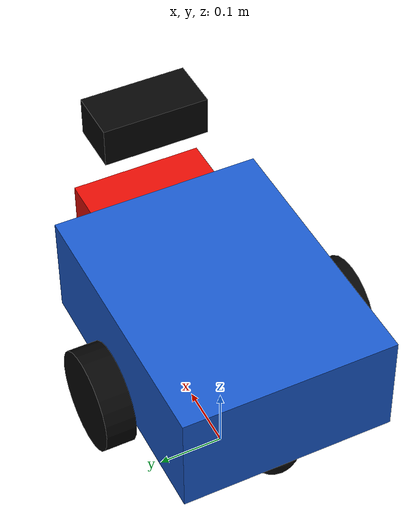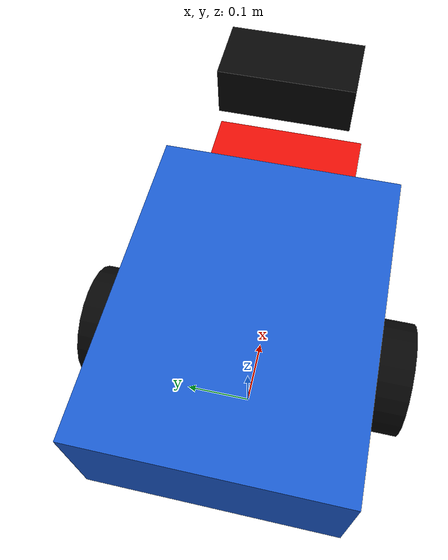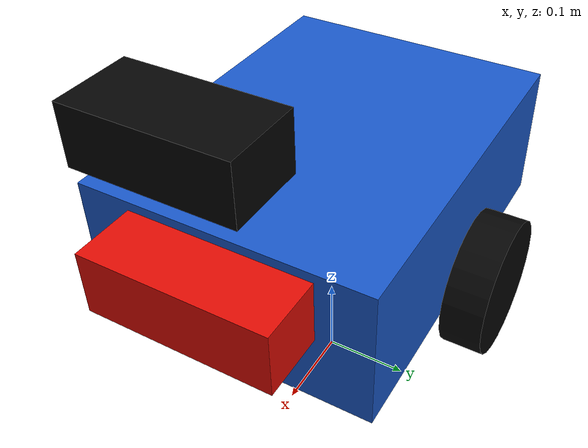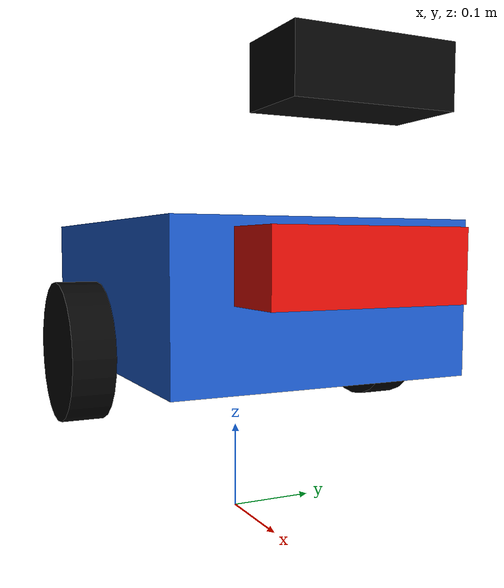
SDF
<?xml version="1.0"?>
<sdf version="1.9">
  <model name="home_bot">
    <pose>0 0 0.12 0 0 0</pose>
    <self_collide>false</self_collide>

    <link name="base_link">
      <pose>0 0 0.14 0 0 0</pose>
      <inertial>
        <mass>8.0</mass>
        <inertia>
          <ixx>0.12</ixx>
          <iyy>0.18</iyy>
          <izz>0.22</izz>
          <ixy>0</ixy>
          <ixz>0</ixz>
          <iyz>0</iyz>
        </inertia>
      </inertial>
      <collision name="base_collision">
        <geometry>
          <box>
            <size>0.42 0.32 0.16</size>
          </box>
        </geometry>
      </collision>
      <visual name="base_visual">
        <geometry>
          <box>
            <size>0.42 0.32 0.16</size>
          </box>
        </geometry>
        <material>
          <diffuse>0.1 0.35 0.8 1</diffuse>
        </material>
      </visual>
      <visual name="front_marker_visual">
        <pose>0.245 0 0.035 0 0 0</pose>
        <geometry>
          <box>
            <size>0.07 0.20 0.07</size>
          </box>
        </geometry>
        <material>
          <diffuse>0.9 0.05 0.02 1</diffuse>
        </material>
      </visual>
    </link>

    <link name="left_wheel">
      <pose>0 0.19 0.08 1.570796 0 0</pose>
      <inertial>
        <mass>0.5</mass>
        <inertia>
          <ixx>0.001</ixx>
          <iyy>0.001</iyy>
          <izz>0.001</izz>
          <ixy>0</ixy>
          <ixz>0</ixz>
          <iyz>0</iyz>
        </inertia>
      </inertial>
      <collision name="left_wheel_collision">
        <geometry>
          <cylinder>
            <radius>0.075</radius>
            <length>0.045</length>
          </cylinder>
        </geometry>
        <surface>
          <friction>
            <ode>
              <mu>1.0</mu>
              <mu2>1.0</mu2>
            </ode>
          </friction>
        </surface>
      </collision>
      <visual name="left_wheel_visual">
        <geometry>
          <cylinder>
            <radius>0.075</radius>
            <length>0.045</length>
          </cylinder>
        </geometry>
        <material>
          <diffuse>0.02 0.02 0.02 1</diffuse>
        </material>
      </visual>
    </link>

    <link name="right_wheel">
      <pose>0 -0.19 0.08 1.570796 0 0</pose>
      <inertial>
        <mass>0.5</mass>
        <inertia>
          <ixx>0.001</ixx>
          <iyy>0.001</iyy>
          <izz>0.001</izz>
          <ixy>0</ixy>
          <ixz>0</ixz>
          <iyz>0</iyz>
        </inertia>
      </inertial>
      <collision name="right_wheel_collision">
        <geometry>
          <cylinder>
            <radius>0.075</radius>
            <length>0.045</length>
          </cylinder>
        </geometry>
        <surface>
          <friction>
            <ode>
              <mu>1.0</mu>
              <mu2>1.0</mu2>
            </ode>
          </friction>
        </surface>
      </collision>
      <visual name="right_wheel_visual">
        <geometry>
          <cylinder>
            <radius>0.075</radius>
            <length>0.045</length>
          </cylinder>
        </geometry>
        <material>
          <diffuse>0.02 0.02 0.02 1</diffuse>
        </material>
      </visual>
    </link>

    <link name="caster">
      <pose>-0.16 0 0.04 0 0 0</pose>
      <collision name="caster_collision">
        <geometry>
          <sphere>
            <radius>0.04</radius>
          </sphere>
        </geometry>
      </collision>
      <visual name="caster_visual">
        <geometry>
          <sphere>
            <radius>0.04</radius>
          </sphere>
        </geometry>
        <material>
          <diffuse>0.05 0.05 0.05 1</diffuse>
        </material>
      </visual>
    </link>

    <link name="imu_link">
      <pose>0 0 0.24 0 0 0</pose>
      <sensor name="imu_sensor" type="imu">
        <always_on>true</always_on>
        <update_rate>100</update_rate>
        <topic>/imu/data</topic>
      </sensor>
    </link>

    <link name="camera_link">
      <pose>0.24 0 0.34 0 0 0</pose>
      <visual name="camera_visual">
        <geometry>
          <box>
            <size>0.08 0.16 0.06</size>
          </box>
        </geometry>
        <material>
          <diffuse>0.02 0.02 0.02 1</diffuse>
        </material>
      </visual>
      <sensor name="rgbd_camera" type="rgbd_camera">
        <always_on>true</always_on>
        <update_rate>8</update_rate>
        <topic>/camera</topic>
        <camera>
          <horizontal_fov>1.3962634</horizontal_fov>
          <image>
            <width>120</width>
            <height>90</height>
            <format>R8G8B8</format>
          </image>
          <clip>
            <near>0.12</near>
            <far>5.0</far>
          </clip>
          <depth_camera>
            <clip>
              <near>0.12</near>
              <far>5.0</far>
            </clip>
          </depth_camera>
        </camera>
      </sensor>
    </link>

    <joint name="left_wheel_joint" type="revolute">
      <parent>base_link</parent>
      <child>left_wheel</child>
      <axis>
        <xyz>0 0 1</xyz>
        <limit>
          <lower>-1e16</lower>
          <upper>1e16</upper>
        </limit>
      </axis>
    </joint>

    <joint name="right_wheel_joint" type="revolute">
      <parent>base_link</parent>
      <child>right_wheel</child>
      <axis>
        <xyz>0 0 1</xyz>
        <limit>
          <lower>-1e16</lower>
          <upper>1e16</upper>
        </limit>
      </axis>
    </joint>

    <joint name="caster_joint" type="fixed">
      <parent>base_link</parent>
      <child>caster</child>
    </joint>

    <joint name="imu_joint" type="fixed">
      <parent>base_link</parent>
      <child>imu_link</child>
    </joint>

    <joint name="camera_joint" type="fixed">
      <parent>base_link</parent>
      <child>camera_link</child>
    </joint>

    <plugin filename="ignition-gazebo-diff-drive-system" name="ignition::gazebo::v6::systems::DiffDrive">
      <left_joint>left_wheel_joint</left_joint>
      <right_joint>right_wheel_joint</right_joint>
      <wheel_separation>0.38</wheel_separation>
      <wheel_radius>0.075</wheel_radius>
      <odom_publish_frequency>50</odom_publish_frequency>
      <topic>/cmd_vel_gz</topic>
      <odom_topic>/odom</odom_topic>
      <tf_topic>/tf</tf_topic>
      <frame_id>odom</frame_id>
      <child_frame_id>base_link</child_frame_id>
    </plugin>

    <plugin filename="ignition-gazebo-joint-state-publisher-system" name="ignition::gazebo::v6::systems::JointStatePublisher">
      <topic>/joint_states</topic>
      <joint_name>left_wheel_joint</joint_name>
      <joint_name>right_wheel_joint</joint_name>
    </plugin>

    <plugin filename="ignition-gazebo-pose-publisher-system" name="ignition::gazebo::v6::systems::PosePublisher">
      <publish_model_pose>true</publish_model_pose>
      <publish_link_pose>false</publish_link_pose>
      <publish_collision_pose>false</publish_collision_pose>
      <publish_visual_pose>false</publish_visual_pose>
      <publish_sensor_pose>false</publish_sensor_pose>
      <publish_nested_model_pose>false</publish_nested_model_pose>
    </plugin>
  </model>
</sdf>
